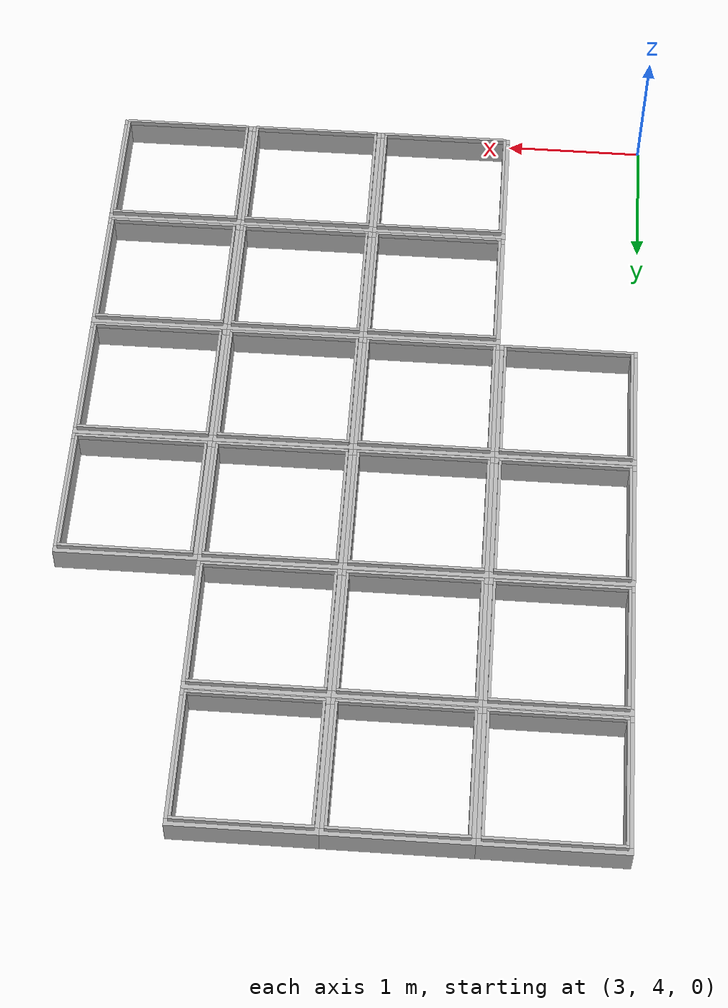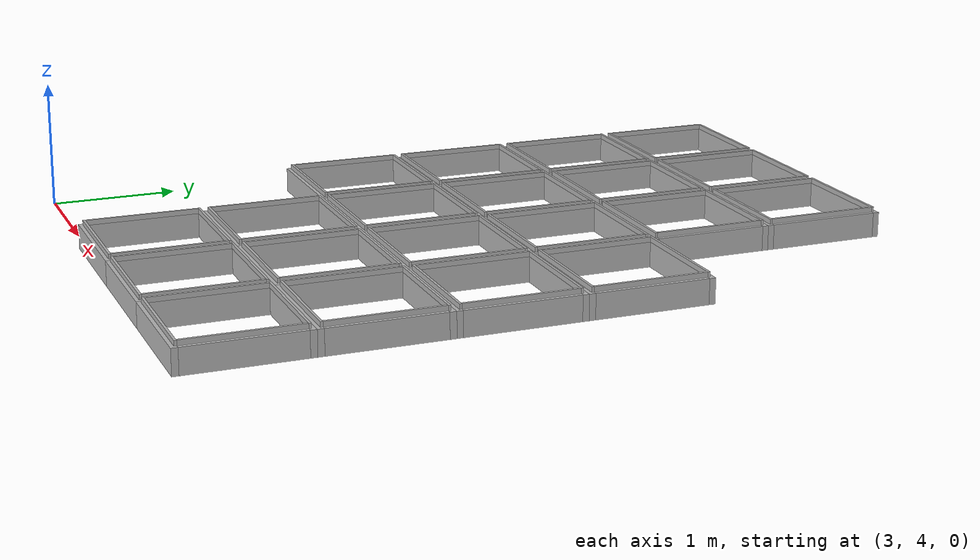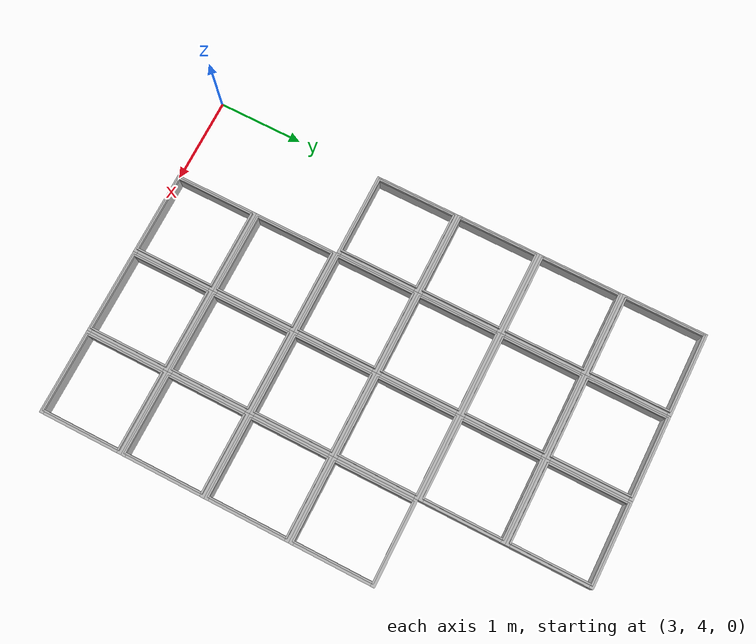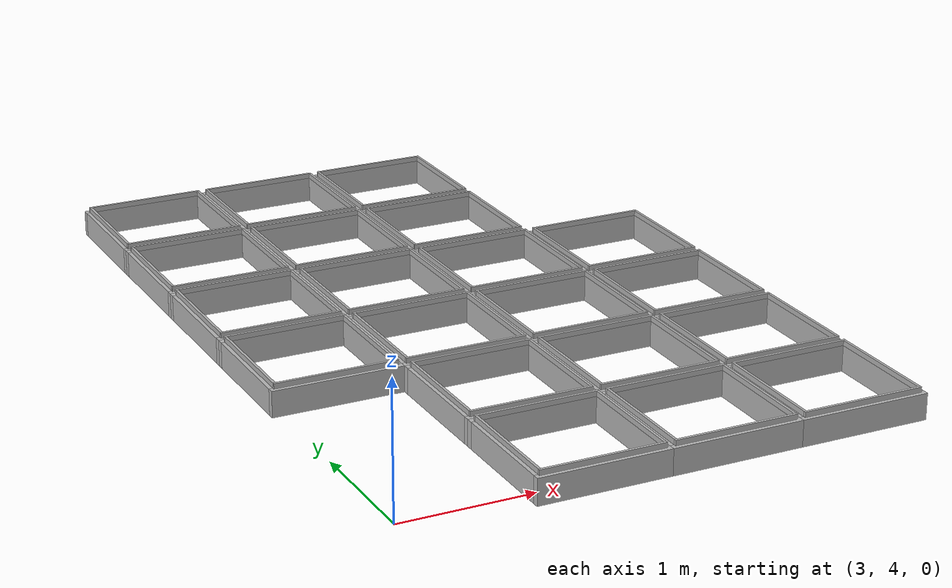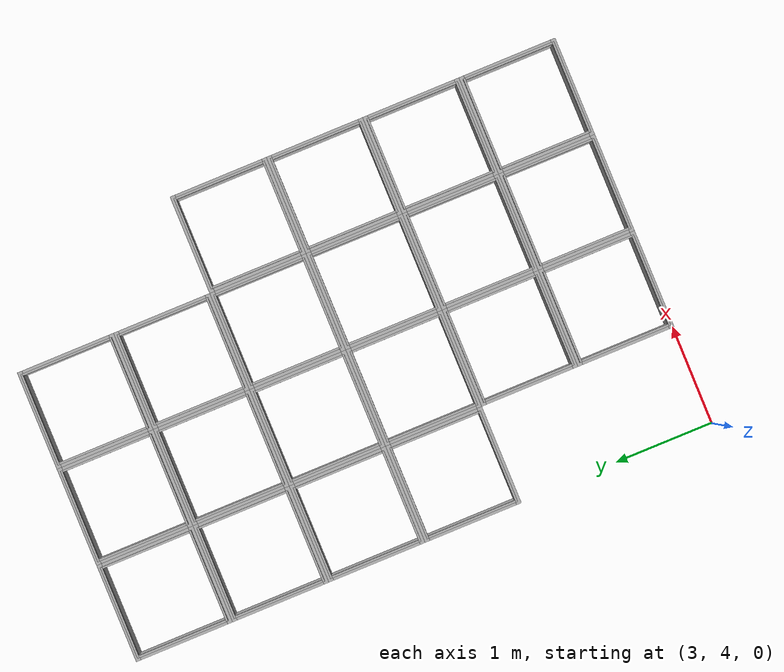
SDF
<sdf version="1.4">
 <model name="Auto Store Frame">
  <static>true</static>
  <link name="cell_36">
   <pose>3.5 6.5 0 0 0 0</pose>
   <collision name="frame_collision_x1">
    <pose>0 -0.475 0 0 0 0</pose>
    <geometry><box><size>1 0.05 0.2 0 0 0</size></box></geometry>
   </collision>
   <collision name="frame_collision_x2">
    <pose>0 0.475 0 0 0 0</pose>
    <geometry><box><size>1 0.05 0.2 0 0 0</size></box></geometry>
   </collision>
   <collision name="frame_collision_y1">
    <pose>-0.475 0 0 0 0 0</pose>
    <geometry><box><size>0.05 0.9 0.2 0 0 0</size></box></geometry>
   </collision>
   <collision name="frame_collision_y2">
    <pose>0.475 0 0 0 0 0</pose>
    <geometry><box><size>0.05 0.9 0.2 0 0 0</size></box></geometry>
   </collision>
   <collision name="guide_collision_x1">
    <pose>0 -0.46 0.12 0 0 0</pose>
    <geometry><box><size>0.94 0.02 0.04 0 0 0</size></box></geometry>
   </collision>
   <collision name="guide_collision_x2">
    <pose>0 0.46 0.12 0 0 0</pose>
    <geometry><box><size>0.94 0.02 0.04 0 0 0</size></box></geometry>
   </collision>
   <collision name="guide_collision_y1">
    <pose>-0.46 0 0.12 0 0 0</pose>
    <geometry><box><size>0.02 0.9 0.04 0 0 0</size></box></geometry>
   </collision>
   <collision name="guide_collision_y2">
    <pose>0.46 0 0.12 0 0 0</pose>
    <geometry><box><size>0.02 0.9 0.04 0 0 0</size></box></geometry>
   </collision>
   <visual name="frame_visual_x1">
    <pose>0 -0.475 0 0 0 0</pose>
    <geometry><box><size>1 0.05 0.2 0 0 0</size></box></geometry>
   </visual>
   <visual name="frame_visual_x2">
    <pose>0 0.475 0 0 0 0</pose>
    <geometry><box><size>1 0.05 0.2 0 0 0</size></box></geometry>
   </visual>
   <visual name="frame_visual_y1">
    <pose>-0.475 0 0 0 0 0</pose>
    <geometry><box><size>0.05 0.9 0.2 0 0 0</size></box></geometry>
   </visual>
   <visual name="frame_visual_y2">
    <pose>0.475 0 0 0 0 0</pose>
    <geometry><box><size>0.05 0.9 0.2 0 0 0</size></box></geometry>
   </visual>
   <visual name="guide_visual_x1">
    <pose>0 -0.46 0.12 0 0 0</pose>
    <geometry><box><size>0.94 0.02 0.04 0 0 0</size></box></geometry>
   </visual>
   <visual name="guide_visual_x2">
    <pose>0 0.46 0.12 0 0 0</pose>
    <geometry><box><size>0.94 0.02 0.04 0 0 0</size></box></geometry>
   </visual>
   <visual name="guide_visual_y1">
    <pose>-0.46 0 0.12 0 0 0</pose>
    <geometry><box><size>0.02 0.9 0.04 0 0 0</size></box></geometry>
   </visual>
   <visual name="guide_visual_y2">
    <pose>0.46 0 0.12 0 0 0</pose>
    <geometry><box><size>0.02 0.9 0.04 0 0 0</size></box></geometry>
   </visual>
  </link>
  <link name="cell_37">
   <pose>3.5 7.5 0 0 0 0</pose>
   <collision name="frame_collision_x1">
    <pose>0 -0.475 0 0 0 0</pose>
    <geometry><box><size>1 0.05 0.2 0 0 0</size></box></geometry>
   </collision>
   <collision name="frame_collision_x2">
    <pose>0 0.475 0 0 0 0</pose>
    <geometry><box><size>1 0.05 0.2 0 0 0</size></box></geometry>
   </collision>
   <collision name="frame_collision_y1">
    <pose>-0.475 0 0 0 0 0</pose>
    <geometry><box><size>0.05 0.9 0.2 0 0 0</size></box></geometry>
   </collision>
   <collision name="frame_collision_y2">
    <pose>0.475 0 0 0 0 0</pose>
    <geometry><box><size>0.05 0.9 0.2 0 0 0</size></box></geometry>
   </collision>
   <collision name="guide_collision_x1">
    <pose>0 -0.46 0.12 0 0 0</pose>
    <geometry><box><size>0.94 0.02 0.04 0 0 0</size></box></geometry>
   </collision>
   <collision name="guide_collision_x2">
    <pose>0 0.46 0.12 0 0 0</pose>
    <geometry><box><size>0.94 0.02 0.04 0 0 0</size></box></geometry>
   </collision>
   <collision name="guide_collision_y1">
    <pose>-0.46 0 0.12 0 0 0</pose>
    <geometry><box><size>0.02 0.9 0.04 0 0 0</size></box></geometry>
   </collision>
   <collision name="guide_collision_y2">
    <pose>0.46 0 0.12 0 0 0</pose>
    <geometry><box><size>0.02 0.9 0.04 0 0 0</size></box></geometry>
   </collision>
   <visual name="frame_visual_x1">
    <pose>0 -0.475 0 0 0 0</pose>
    <geometry><box><size>1 0.05 0.2 0 0 0</size></box></geometry>
   </visual>
   <visual name="frame_visual_x2">
    <pose>0 0.475 0 0 0 0</pose>
    <geometry><box><size>1 0.05 0.2 0 0 0</size></box></geometry>
   </visual>
   <visual name="frame_visual_y1">
    <pose>-0.475 0 0 0 0 0</pose>
    <geometry><box><size>0.05 0.9 0.2 0 0 0</size></box></geometry>
   </visual>
   <visual name="frame_visual_y2">
    <pose>0.475 0 0 0 0 0</pose>
    <geometry><box><size>0.05 0.9 0.2 0 0 0</size></box></geometry>
   </visual>
   <visual name="guide_visual_x1">
    <pose>0 -0.46 0.12 0 0 0</pose>
    <geometry><box><size>0.94 0.02 0.04 0 0 0</size></box></geometry>
   </visual>
   <visual name="guide_visual_x2">
    <pose>0 0.46 0.12 0 0 0</pose>
    <geometry><box><size>0.94 0.02 0.04 0 0 0</size></box></geometry>
   </visual>
   <visual name="guide_visual_y1">
    <pose>-0.46 0 0.12 0 0 0</pose>
    <geometry><box><size>0.02 0.9 0.04 0 0 0</size></box></geometry>
   </visual>
   <visual name="guide_visual_y2">
    <pose>0.46 0 0.12 0 0 0</pose>
    <geometry><box><size>0.02 0.9 0.04 0 0 0</size></box></geometry>
   </visual>
  </link>
  <link name="cell_38">
   <pose>3.5 8.5 0 0 0 0</pose>
   <collision name="frame_collision_x1">
    <pose>0 -0.475 0 0 0 0</pose>
    <geometry><box><size>1 0.05 0.2 0 0 0</size></box></geometry>
   </collision>
   <collision name="frame_collision_x2">
    <pose>0 0.475 0 0 0 0</pose>
    <geometry><box><size>1 0.05 0.2 0 0 0</size></box></geometry>
   </collision>
   <collision name="frame_collision_y1">
    <pose>-0.475 0 0 0 0 0</pose>
    <geometry><box><size>0.05 0.9 0.2 0 0 0</size></box></geometry>
   </collision>
   <collision name="frame_collision_y2">
    <pose>0.475 0 0 0 0 0</pose>
    <geometry><box><size>0.05 0.9 0.2 0 0 0</size></box></geometry>
   </collision>
   <collision name="guide_collision_x1">
    <pose>0 -0.46 0.12 0 0 0</pose>
    <geometry><box><size>0.94 0.02 0.04 0 0 0</size></box></geometry>
   </collision>
   <collision name="guide_collision_x2">
    <pose>0 0.46 0.12 0 0 0</pose>
    <geometry><box><size>0.94 0.02 0.04 0 0 0</size></box></geometry>
   </collision>
   <collision name="guide_collision_y1">
    <pose>-0.46 0 0.12 0 0 0</pose>
    <geometry><box><size>0.02 0.9 0.04 0 0 0</size></box></geometry>
   </collision>
   <collision name="guide_collision_y2">
    <pose>0.46 0 0.12 0 0 0</pose>
    <geometry><box><size>0.02 0.9 0.04 0 0 0</size></box></geometry>
   </collision>
   <visual name="frame_visual_x1">
    <pose>0 -0.475 0 0 0 0</pose>
    <geometry><box><size>1 0.05 0.2 0 0 0</size></box></geometry>
   </visual>
   <visual name="frame_visual_x2">
    <pose>0 0.475 0 0 0 0</pose>
    <geometry><box><size>1 0.05 0.2 0 0 0</size></box></geometry>
   </visual>
   <visual name="frame_visual_y1">
    <pose>-0.475 0 0 0 0 0</pose>
    <geometry><box><size>0.05 0.9 0.2 0 0 0</size></box></geometry>
   </visual>
   <visual name="frame_visual_y2">
    <pose>0.475 0 0 0 0 0</pose>
    <geometry><box><size>0.05 0.9 0.2 0 0 0</size></box></geometry>
   </visual>
   <visual name="guide_visual_x1">
    <pose>0 -0.46 0.12 0 0 0</pose>
    <geometry><box><size>0.94 0.02 0.04 0 0 0</size></box></geometry>
   </visual>
   <visual name="guide_visual_x2">
    <pose>0 0.46 0.12 0 0 0</pose>
    <geometry><box><size>0.94 0.02 0.04 0 0 0</size></box></geometry>
   </visual>
   <visual name="guide_visual_y1">
    <pose>-0.46 0 0.12 0 0 0</pose>
    <geometry><box><size>0.02 0.9 0.04 0 0 0</size></box></geometry>
   </visual>
   <visual name="guide_visual_y2">
    <pose>0.46 0 0.12 0 0 0</pose>
    <geometry><box><size>0.02 0.9 0.04 0 0 0</size></box></geometry>
   </visual>
  </link>
  <link name="cell_39">
   <pose>3.5 9.5 0 0 0 0</pose>
   <collision name="frame_collision_x1">
    <pose>0 -0.475 0 0 0 0</pose>
    <geometry><box><size>1 0.05 0.2 0 0 0</size></box></geometry>
   </collision>
   <collision name="frame_collision_x2">
    <pose>0 0.475 0 0 0 0</pose>
    <geometry><box><size>1 0.05 0.2 0 0 0</size></box></geometry>
   </collision>
   <collision name="frame_collision_y1">
    <pose>-0.475 0 0 0 0 0</pose>
    <geometry><box><size>0.05 0.9 0.2 0 0 0</size></box></geometry>
   </collision>
   <collision name="frame_collision_y2">
    <pose>0.475 0 0 0 0 0</pose>
    <geometry><box><size>0.05 0.9 0.2 0 0 0</size></box></geometry>
   </collision>
   <collision name="guide_collision_x1">
    <pose>0 -0.46 0.12 0 0 0</pose>
    <geometry><box><size>0.94 0.02 0.04 0 0 0</size></box></geometry>
   </collision>
   <collision name="guide_collision_x2">
    <pose>0 0.46 0.12 0 0 0</pose>
    <geometry><box><size>0.94 0.02 0.04 0 0 0</size></box></geometry>
   </collision>
   <collision name="guide_collision_y1">
    <pose>-0.46 0 0.12 0 0 0</pose>
    <geometry><box><size>0.02 0.9 0.04 0 0 0</size></box></geometry>
   </collision>
   <collision name="guide_collision_y2">
    <pose>0.46 0 0.12 0 0 0</pose>
    <geometry><box><size>0.02 0.9 0.04 0 0 0</size></box></geometry>
   </collision>
   <visual name="frame_visual_x1">
    <pose>0 -0.475 0 0 0 0</pose>
    <geometry><box><size>1 0.05 0.2 0 0 0</size></box></geometry>
   </visual>
   <visual name="frame_visual_x2">
    <pose>0 0.475 0 0 0 0</pose>
    <geometry><box><size>1 0.05 0.2 0 0 0</size></box></geometry>
   </visual>
   <visual name="frame_visual_y1">
    <pose>-0.475 0 0 0 0 0</pose>
    <geometry><box><size>0.05 0.9 0.2 0 0 0</size></box></geometry>
   </visual>
   <visual name="frame_visual_y2">
    <pose>0.475 0 0 0 0 0</pose>
    <geometry><box><size>0.05 0.9 0.2 0 0 0</size></box></geometry>
   </visual>
   <visual name="guide_visual_x1">
    <pose>0 -0.46 0.12 0 0 0</pose>
    <geometry><box><size>0.94 0.02 0.04 0 0 0</size></box></geometry>
   </visual>
   <visual name="guide_visual_x2">
    <pose>0 0.46 0.12 0 0 0</pose>
    <geometry><box><size>0.94 0.02 0.04 0 0 0</size></box></geometry>
   </visual>
   <visual name="guide_visual_y1">
    <pose>-0.46 0 0.12 0 0 0</pose>
    <geometry><box><size>0.02 0.9 0.04 0 0 0</size></box></geometry>
   </visual>
   <visual name="guide_visual_y2">
    <pose>0.46 0 0.12 0 0 0</pose>
    <geometry><box><size>0.02 0.9 0.04 0 0 0</size></box></geometry>
   </visual>
  </link>
  <link name="cell_44">
   <pose>4.5 4.5 0 0 0 0</pose>
   <collision name="frame_collision_x1">
    <pose>0 -0.475 0 0 0 0</pose>
    <geometry><box><size>1 0.05 0.2 0 0 0</size></box></geometry>
   </collision>
   <collision name="frame_collision_x2">
    <pose>0 0.475 0 0 0 0</pose>
    <geometry><box><size>1 0.05 0.2 0 0 0</size></box></geometry>
   </collision>
   <collision name="frame_collision_y1">
    <pose>-0.475 0 0 0 0 0</pose>
    <geometry><box><size>0.05 0.9 0.2 0 0 0</size></box></geometry>
   </collision>
   <collision name="frame_collision_y2">
    <pose>0.475 0 0 0 0 0</pose>
    <geometry><box><size>0.05 0.9 0.2 0 0 0</size></box></geometry>
   </collision>
   <collision name="guide_collision_x1">
    <pose>0 -0.46 0.12 0 0 0</pose>
    <geometry><box><size>0.94 0.02 0.04 0 0 0</size></box></geometry>
   </collision>
   <collision name="guide_collision_x2">
    <pose>0 0.46 0.12 0 0 0</pose>
    <geometry><box><size>0.94 0.02 0.04 0 0 0</size></box></geometry>
   </collision>
   <collision name="guide_collision_y1">
    <pose>-0.46 0 0.12 0 0 0</pose>
    <geometry><box><size>0.02 0.9 0.04 0 0 0</size></box></geometry>
   </collision>
   <collision name="guide_collision_y2">
    <pose>0.46 0 0.12 0 0 0</pose>
    <geometry><box><size>0.02 0.9 0.04 0 0 0</size></box></geometry>
   </collision>
   <visual name="frame_visual_x1">
    <pose>0 -0.475 0 0 0 0</pose>
    <geometry><box><size>1 0.05 0.2 0 0 0</size></box></geometry>
   </visual>
   <visual name="frame_visual_x2">
    <pose>0 0.475 0 0 0 0</pose>
    <geometry><box><size>1 0.05 0.2 0 0 0</size></box></geometry>
   </visual>
   <visual name="frame_visual_y1">
    <pose>-0.475 0 0 0 0 0</pose>
    <geometry><box><size>0.05 0.9 0.2 0 0 0</size></box></geometry>
   </visual>
   <visual name="frame_visual_y2">
    <pose>0.475 0 0 0 0 0</pose>
    <geometry><box><size>0.05 0.9 0.2 0 0 0</size></box></geometry>
   </visual>
   <visual name="guide_visual_x1">
    <pose>0 -0.46 0.12 0 0 0</pose>
    <geometry><box><size>0.94 0.02 0.04 0 0 0</size></box></geometry>
   </visual>
   <visual name="guide_visual_x2">
    <pose>0 0.46 0.12 0 0 0</pose>
    <geometry><box><size>0.94 0.02 0.04 0 0 0</size></box></geometry>
   </visual>
   <visual name="guide_visual_y1">
    <pose>-0.46 0 0.12 0 0 0</pose>
    <geometry><box><size>0.02 0.9 0.04 0 0 0</size></box></geometry>
   </visual>
   <visual name="guide_visual_y2">
    <pose>0.46 0 0.12 0 0 0</pose>
    <geometry><box><size>0.02 0.9 0.04 0 0 0</size></box></geometry>
   </visual>
  </link>
  <link name="cell_45">
   <pose>4.5 5.5 0 0 0 0</pose>
   <collision name="frame_collision_x1">
    <pose>0 -0.475 0 0 0 0</pose>
    <geometry><box><size>1 0.05 0.2 0 0 0</size></box></geometry>
   </collision>
   <collision name="frame_collision_x2">
    <pose>0 0.475 0 0 0 0</pose>
    <geometry><box><size>1 0.05 0.2 0 0 0</size></box></geometry>
   </collision>
   <collision name="frame_collision_y1">
    <pose>-0.475 0 0 0 0 0</pose>
    <geometry><box><size>0.05 0.9 0.2 0 0 0</size></box></geometry>
   </collision>
   <collision name="frame_collision_y2">
    <pose>0.475 0 0 0 0 0</pose>
    <geometry><box><size>0.05 0.9 0.2 0 0 0</size></box></geometry>
   </collision>
   <collision name="guide_collision_x1">
    <pose>0 -0.46 0.12 0 0 0</pose>
    <geometry><box><size>0.94 0.02 0.04 0 0 0</size></box></geometry>
   </collision>
   <collision name="guide_collision_x2">
    <pose>0 0.46 0.12 0 0 0</pose>
    <geometry><box><size>0.94 0.02 0.04 0 0 0</size></box></geometry>
   </collision>
   <collision name="guide_collision_y1">
    <pose>-0.46 0 0.12 0 0 0</pose>
    <geometry><box><size>0.02 0.9 0.04 0 0 0</size></box></geometry>
   </collision>
   <collision name="guide_collision_y2">
    <pose>0.46 0 0.12 0 0 0</pose>
    <geometry><box><size>0.02 0.9 0.04 0 0 0</size></box></geometry>
   </collision>
   <visual name="frame_visual_x1">
    <pose>0 -0.475 0 0 0 0</pose>
    <geometry><box><size>1 0.05 0.2 0 0 0</size></box></geometry>
   </visual>
   <visual name="frame_visual_x2">
    <pose>0 0.475 0 0 0 0</pose>
    <geometry><box><size>1 0.05 0.2 0 0 0</size></box></geometry>
   </visual>
   <visual name="frame_visual_y1">
    <pose>-0.475 0 0 0 0 0</pose>
    <geometry><box><size>0.05 0.9 0.2 0 0 0</size></box></geometry>
   </visual>
   <visual name="frame_visual_y2">
    <pose>0.475 0 0 0 0 0</pose>
    <geometry><box><size>0.05 0.9 0.2 0 0 0</size></box></geometry>
   </visual>
   <visual name="guide_visual_x1">
    <pose>0 -0.46 0.12 0 0 0</pose>
    <geometry><box><size>0.94 0.02 0.04 0 0 0</size></box></geometry>
   </visual>
   <visual name="guide_visual_x2">
    <pose>0 0.46 0.12 0 0 0</pose>
    <geometry><box><size>0.94 0.02 0.04 0 0 0</size></box></geometry>
   </visual>
   <visual name="guide_visual_y1">
    <pose>-0.46 0 0.12 0 0 0</pose>
    <geometry><box><size>0.02 0.9 0.04 0 0 0</size></box></geometry>
   </visual>
   <visual name="guide_visual_y2">
    <pose>0.46 0 0.12 0 0 0</pose>
    <geometry><box><size>0.02 0.9 0.04 0 0 0</size></box></geometry>
   </visual>
  </link>
  <link name="cell_46">
   <pose>4.5 6.5 0 0 0 0</pose>
   <collision name="frame_collision_x1">
    <pose>0 -0.475 0 0 0 0</pose>
    <geometry><box><size>1 0.05 0.2 0 0 0</size></box></geometry>
   </collision>
   <collision name="frame_collision_x2">
    <pose>0 0.475 0 0 0 0</pose>
    <geometry><box><size>1 0.05 0.2 0 0 0</size></box></geometry>
   </collision>
   <collision name="frame_collision_y1">
    <pose>-0.475 0 0 0 0 0</pose>
    <geometry><box><size>0.05 0.9 0.2 0 0 0</size></box></geometry>
   </collision>
   <collision name="frame_collision_y2">
    <pose>0.475 0 0 0 0 0</pose>
    <geometry><box><size>0.05 0.9 0.2 0 0 0</size></box></geometry>
   </collision>
   <collision name="guide_collision_x1">
    <pose>0 -0.46 0.12 0 0 0</pose>
    <geometry><box><size>0.94 0.02 0.04 0 0 0</size></box></geometry>
   </collision>
   <collision name="guide_collision_x2">
    <pose>0 0.46 0.12 0 0 0</pose>
    <geometry><box><size>0.94 0.02 0.04 0 0 0</size></box></geometry>
   </collision>
   <collision name="guide_collision_y1">
    <pose>-0.46 0 0.12 0 0 0</pose>
    <geometry><box><size>0.02 0.9 0.04 0 0 0</size></box></geometry>
   </collision>
   <collision name="guide_collision_y2">
    <pose>0.46 0 0.12 0 0 0</pose>
    <geometry><box><size>0.02 0.9 0.04 0 0 0</size></box></geometry>
   </collision>
   <visual name="frame_visual_x1">
    <pose>0 -0.475 0 0 0 0</pose>
    <geometry><box><size>1 0.05 0.2 0 0 0</size></box></geometry>
   </visual>
   <visual name="frame_visual_x2">
    <pose>0 0.475 0 0 0 0</pose>
    <geometry><box><size>1 0.05 0.2 0 0 0</size></box></geometry>
   </visual>
   <visual name="frame_visual_y1">
    <pose>-0.475 0 0 0 0 0</pose>
    <geometry><box><size>0.05 0.9 0.2 0 0 0</size></box></geometry>
   </visual>
   <visual name="frame_visual_y2">
    <pose>0.475 0 0 0 0 0</pose>
    <geometry><box><size>0.05 0.9 0.2 0 0 0</size></box></geometry>
   </visual>
   <visual name="guide_visual_x1">
    <pose>0 -0.46 0.12 0 0 0</pose>
    <geometry><box><size>0.94 0.02 0.04 0 0 0</size></box></geometry>
   </visual>
   <visual name="guide_visual_x2">
    <pose>0 0.46 0.12 0 0 0</pose>
    <geometry><box><size>0.94 0.02 0.04 0 0 0</size></box></geometry>
   </visual>
   <visual name="guide_visual_y1">
    <pose>-0.46 0 0.12 0 0 0</pose>
    <geometry><box><size>0.02 0.9 0.04 0 0 0</size></box></geometry>
   </visual>
   <visual name="guide_visual_y2">
    <pose>0.46 0 0.12 0 0 0</pose>
    <geometry><box><size>0.02 0.9 0.04 0 0 0</size></box></geometry>
   </visual>
  </link>
  <link name="cell_47">
   <pose>4.5 7.5 0 0 0 0</pose>
   <collision name="frame_collision_x1">
    <pose>0 -0.475 0 0 0 0</pose>
    <geometry><box><size>1 0.05 0.2 0 0 0</size></box></geometry>
   </collision>
   <collision name="frame_collision_x2">
    <pose>0 0.475 0 0 0 0</pose>
    <geometry><box><size>1 0.05 0.2 0 0 0</size></box></geometry>
   </collision>
   <collision name="frame_collision_y1">
    <pose>-0.475 0 0 0 0 0</pose>
    <geometry><box><size>0.05 0.9 0.2 0 0 0</size></box></geometry>
   </collision>
   <collision name="frame_collision_y2">
    <pose>0.475 0 0 0 0 0</pose>
    <geometry><box><size>0.05 0.9 0.2 0 0 0</size></box></geometry>
   </collision>
   <collision name="guide_collision_x1">
    <pose>0 -0.46 0.12 0 0 0</pose>
    <geometry><box><size>0.94 0.02 0.04 0 0 0</size></box></geometry>
   </collision>
   <collision name="guide_collision_x2">
    <pose>0 0.46 0.12 0 0 0</pose>
    <geometry><box><size>0.94 0.02 0.04 0 0 0</size></box></geometry>
   </collision>
   <collision name="guide_collision_y1">
    <pose>-0.46 0 0.12 0 0 0</pose>
    <geometry><box><size>0.02 0.9 0.04 0 0 0</size></box></geometry>
   </collision>
   <collision name="guide_collision_y2">
    <pose>0.46 0 0.12 0 0 0</pose>
    <geometry><box><size>0.02 0.9 0.04 0 0 0</size></box></geometry>
   </collision>
   <visual name="frame_visual_x1">
    <pose>0 -0.475 0 0 0 0</pose>
    <geometry><box><size>1 0.05 0.2 0 0 0</size></box></geometry>
   </visual>
   <visual name="frame_visual_x2">
    <pose>0 0.475 0 0 0 0</pose>
    <geometry><box><size>1 0.05 0.2 0 0 0</size></box></geometry>
   </visual>
   <visual name="frame_visual_y1">
    <pose>-0.475 0 0 0 0 0</pose>
    <geometry><box><size>0.05 0.9 0.2 0 0 0</size></box></geometry>
   </visual>
   <visual name="frame_visual_y2">
    <pose>0.475 0 0 0 0 0</pose>
    <geometry><box><size>0.05 0.9 0.2 0 0 0</size></box></geometry>
   </visual>
   <visual name="guide_visual_x1">
    <pose>0 -0.46 0.12 0 0 0</pose>
    <geometry><box><size>0.94 0.02 0.04 0 0 0</size></box></geometry>
   </visual>
   <visual name="guide_visual_x2">
    <pose>0 0.46 0.12 0 0 0</pose>
    <geometry><box><size>0.94 0.02 0.04 0 0 0</size></box></geometry>
   </visual>
   <visual name="guide_visual_y1">
    <pose>-0.46 0 0.12 0 0 0</pose>
    <geometry><box><size>0.02 0.9 0.04 0 0 0</size></box></geometry>
   </visual>
   <visual name="guide_visual_y2">
    <pose>0.46 0 0.12 0 0 0</pose>
    <geometry><box><size>0.02 0.9 0.04 0 0 0</size></box></geometry>
   </visual>
  </link>
  <link name="cell_48">
   <pose>4.5 8.5 0 0 0 0</pose>
   <collision name="frame_collision_x1">
    <pose>0 -0.475 0 0 0 0</pose>
    <geometry><box><size>1 0.05 0.2 0 0 0</size></box></geometry>
   </collision>
   <collision name="frame_collision_x2">
    <pose>0 0.475 0 0 0 0</pose>
    <geometry><box><size>1 0.05 0.2 0 0 0</size></box></geometry>
   </collision>
   <collision name="frame_collision_y1">
    <pose>-0.475 0 0 0 0 0</pose>
    <geometry><box><size>0.05 0.9 0.2 0 0 0</size></box></geometry>
   </collision>
   <collision name="frame_collision_y2">
    <pose>0.475 0 0 0 0 0</pose>
    <geometry><box><size>0.05 0.9 0.2 0 0 0</size></box></geometry>
   </collision>
   <collision name="guide_collision_x1">
    <pose>0 -0.46 0.12 0 0 0</pose>
    <geometry><box><size>0.94 0.02 0.04 0 0 0</size></box></geometry>
   </collision>
   <collision name="guide_collision_x2">
    <pose>0 0.46 0.12 0 0 0</pose>
    <geometry><box><size>0.94 0.02 0.04 0 0 0</size></box></geometry>
   </collision>
   <collision name="guide_collision_y1">
    <pose>-0.46 0 0.12 0 0 0</pose>
    <geometry><box><size>0.02 0.9 0.04 0 0 0</size></box></geometry>
   </collision>
   <collision name="guide_collision_y2">
    <pose>0.46 0 0.12 0 0 0</pose>
    <geometry><box><size>0.02 0.9 0.04 0 0 0</size></box></geometry>
   </collision>
   <visual name="frame_visual_x1">
    <pose>0 -0.475 0 0 0 0</pose>
    <geometry><box><size>1 0.05 0.2 0 0 0</size></box></geometry>
   </visual>
   <visual name="frame_visual_x2">
    <pose>0 0.475 0 0 0 0</pose>
    <geometry><box><size>1 0.05 0.2 0 0 0</size></box></geometry>
   </visual>
   <visual name="frame_visual_y1">
    <pose>-0.475 0 0 0 0 0</pose>
    <geometry><box><size>0.05 0.9 0.2 0 0 0</size></box></geometry>
   </visual>
   <visual name="frame_visual_y2">
    <pose>0.475 0 0 0 0 0</pose>
    <geometry><box><size>0.05 0.9 0.2 0 0 0</size></box></geometry>
   </visual>
   <visual name="guide_visual_x1">
    <pose>0 -0.46 0.12 0 0 0</pose>
    <geometry><box><size>0.94 0.02 0.04 0 0 0</size></box></geometry>
   </visual>
   <visual name="guide_visual_x2">
    <pose>0 0.46 0.12 0 0 0</pose>
    <geometry><box><size>0.94 0.02 0.04 0 0 0</size></box></geometry>
   </visual>
   <visual name="guide_visual_y1">
    <pose>-0.46 0 0.12 0 0 0</pose>
    <geometry><box><size>0.02 0.9 0.04 0 0 0</size></box></geometry>
   </visual>
   <visual name="guide_visual_y2">
    <pose>0.46 0 0.12 0 0 0</pose>
    <geometry><box><size>0.02 0.9 0.04 0 0 0</size></box></geometry>
   </visual>
  </link>
  <link name="cell_49">
   <pose>4.5 9.5 0 0 0 0</pose>
   <collision name="frame_collision_x1">
    <pose>0 -0.475 0 0 0 0</pose>
    <geometry><box><size>1 0.05 0.2 0 0 0</size></box></geometry>
   </collision>
   <collision name="frame_collision_x2">
    <pose>0 0.475 0 0 0 0</pose>
    <geometry><box><size>1 0.05 0.2 0 0 0</size></box></geometry>
   </collision>
   <collision name="frame_collision_y1">
    <pose>-0.475 0 0 0 0 0</pose>
    <geometry><box><size>0.05 0.9 0.2 0 0 0</size></box></geometry>
   </collision>
   <collision name="frame_collision_y2">
    <pose>0.475 0 0 0 0 0</pose>
    <geometry><box><size>0.05 0.9 0.2 0 0 0</size></box></geometry>
   </collision>
   <collision name="guide_collision_x1">
    <pose>0 -0.46 0.12 0 0 0</pose>
    <geometry><box><size>0.94 0.02 0.04 0 0 0</size></box></geometry>
   </collision>
   <collision name="guide_collision_x2">
    <pose>0 0.46 0.12 0 0 0</pose>
    <geometry><box><size>0.94 0.02 0.04 0 0 0</size></box></geometry>
   </collision>
   <collision name="guide_collision_y1">
    <pose>-0.46 0 0.12 0 0 0</pose>
    <geometry><box><size>0.02 0.9 0.04 0 0 0</size></box></geometry>
   </collision>
   <collision name="guide_collision_y2">
    <pose>0.46 0 0.12 0 0 0</pose>
    <geometry><box><size>0.02 0.9 0.04 0 0 0</size></box></geometry>
   </collision>
   <visual name="frame_visual_x1">
    <pose>0 -0.475 0 0 0 0</pose>
    <geometry><box><size>1 0.05 0.2 0 0 0</size></box></geometry>
   </visual>
   <visual name="frame_visual_x2">
    <pose>0 0.475 0 0 0 0</pose>
    <geometry><box><size>1 0.05 0.2 0 0 0</size></box></geometry>
   </visual>
   <visual name="frame_visual_y1">
    <pose>-0.475 0 0 0 0 0</pose>
    <geometry><box><size>0.05 0.9 0.2 0 0 0</size></box></geometry>
   </visual>
   <visual name="frame_visual_y2">
    <pose>0.475 0 0 0 0 0</pose>
    <geometry><box><size>0.05 0.9 0.2 0 0 0</size></box></geometry>
   </visual>
   <visual name="guide_visual_x1">
    <pose>0 -0.46 0.12 0 0 0</pose>
    <geometry><box><size>0.94 0.02 0.04 0 0 0</size></box></geometry>
   </visual>
   <visual name="guide_visual_x2">
    <pose>0 0.46 0.12 0 0 0</pose>
    <geometry><box><size>0.94 0.02 0.04 0 0 0</size></box></geometry>
   </visual>
   <visual name="guide_visual_y1">
    <pose>-0.46 0 0.12 0 0 0</pose>
    <geometry><box><size>0.02 0.9 0.04 0 0 0</size></box></geometry>
   </visual>
   <visual name="guide_visual_y2">
    <pose>0.46 0 0.12 0 0 0</pose>
    <geometry><box><size>0.02 0.9 0.04 0 0 0</size></box></geometry>
   </visual>
  </link>
  <link name="cell_54">
   <pose>5.5 4.5 0 0 0 0</pose>
   <collision name="frame_collision_x1">
    <pose>0 -0.475 0 0 0 0</pose>
    <geometry><box><size>1 0.05 0.2 0 0 0</size></box></geometry>
   </collision>
   <collision name="frame_collision_x2">
    <pose>0 0.475 0 0 0 0</pose>
    <geometry><box><size>1 0.05 0.2 0 0 0</size></box></geometry>
   </collision>
   <collision name="frame_collision_y1">
    <pose>-0.475 0 0 0 0 0</pose>
    <geometry><box><size>0.05 0.9 0.2 0 0 0</size></box></geometry>
   </collision>
   <collision name="frame_collision_y2">
    <pose>0.475 0 0 0 0 0</pose>
    <geometry><box><size>0.05 0.9 0.2 0 0 0</size></box></geometry>
   </collision>
   <collision name="guide_collision_x1">
    <pose>0 -0.46 0.12 0 0 0</pose>
    <geometry><box><size>0.94 0.02 0.04 0 0 0</size></box></geometry>
   </collision>
   <collision name="guide_collision_x2">
    <pose>0 0.46 0.12 0 0 0</pose>
    <geometry><box><size>0.94 0.02 0.04 0 0 0</size></box></geometry>
   </collision>
   <collision name="guide_collision_y1">
    <pose>-0.46 0 0.12 0 0 0</pose>
    <geometry><box><size>0.02 0.9 0.04 0 0 0</size></box></geometry>
   </collision>
   <collision name="guide_collision_y2">
    <pose>0.46 0 0.12 0 0 0</pose>
    <geometry><box><size>0.02 0.9 0.04 0 0 0</size></box></geometry>
   </collision>
   <visual name="frame_visual_x1">
    <pose>0 -0.475 0 0 0 0</pose>
    <geometry><box><size>1 0.05 0.2 0 0 0</size></box></geometry>
   </visual>
   <visual name="frame_visual_x2">
    <pose>0 0.475 0 0 0 0</pose>
    <geometry><box><size>1 0.05 0.2 0 0 0</size></box></geometry>
   </visual>
   <visual name="frame_visual_y1">
    <pose>-0.475 0 0 0 0 0</pose>
    <geometry><box><size>0.05 0.9 0.2 0 0 0</size></box></geometry>
   </visual>
   <visual name="frame_visual_y2">
    <pose>0.475 0 0 0 0 0</pose>
    <geometry><box><size>0.05 0.9 0.2 0 0 0</size></box></geometry>
   </visual>
   <visual name="guide_visual_x1">
    <pose>0 -0.46 0.12 0 0 0</pose>
    <geometry><box><size>0.94 0.02 0.04 0 0 0</size></box></geometry>
   </visual>
   <visual name="guide_visual_x2">
    <pose>0 0.46 0.12 0 0 0</pose>
    <geometry><box><size>0.94 0.02 0.04 0 0 0</size></box></geometry>
   </visual>
   <visual name="guide_visual_y1">
    <pose>-0.46 0 0.12 0 0 0</pose>
    <geometry><box><size>0.02 0.9 0.04 0 0 0</size></box></geometry>
   </visual>
   <visual name="guide_visual_y2">
    <pose>0.46 0 0.12 0 0 0</pose>
    <geometry><box><size>0.02 0.9 0.04 0 0 0</size></box></geometry>
   </visual>
  </link>
  <link name="cell_55">
   <pose>5.5 5.5 0 0 0 0</pose>
   <collision name="frame_collision_x1">
    <pose>0 -0.475 0 0 0 0</pose>
    <geometry><box><size>1 0.05 0.2 0 0 0</size></box></geometry>
   </collision>
   <collision name="frame_collision_x2">
    <pose>0 0.475 0 0 0 0</pose>
    <geometry><box><size>1 0.05 0.2 0 0 0</size></box></geometry>
   </collision>
   <collision name="frame_collision_y1">
    <pose>-0.475 0 0 0 0 0</pose>
    <geometry><box><size>0.05 0.9 0.2 0 0 0</size></box></geometry>
   </collision>
   <collision name="frame_collision_y2">
    <pose>0.475 0 0 0 0 0</pose>
    <geometry><box><size>0.05 0.9 0.2 0 0 0</size></box></geometry>
   </collision>
   <collision name="guide_collision_x1">
    <pose>0 -0.46 0.12 0 0 0</pose>
    <geometry><box><size>0.94 0.02 0.04 0 0 0</size></box></geometry>
   </collision>
   <collision name="guide_collision_x2">
    <pose>0 0.46 0.12 0 0 0</pose>
    <geometry><box><size>0.94 0.02 0.04 0 0 0</size></box></geometry>
   </collision>
   <collision name="guide_collision_y1">
    <pose>-0.46 0 0.12 0 0 0</pose>
    <geometry><box><size>0.02 0.9 0.04 0 0 0</size></box></geometry>
   </collision>
   <collision name="guide_collision_y2">
    <pose>0.46 0 0.12 0 0 0</pose>
    <geometry><box><size>0.02 0.9 0.04 0 0 0</size></box></geometry>
   </collision>
   <visual name="frame_visual_x1">
    <pose>0 -0.475 0 0 0 0</pose>
    <geometry><box><size>1 0.05 0.2 0 0 0</size></box></geometry>
   </visual>
   <visual name="frame_visual_x2">
    <pose>0 0.475 0 0 0 0</pose>
    <geometry><box><size>1 0.05 0.2 0 0 0</size></box></geometry>
   </visual>
   <visual name="frame_visual_y1">
    <pose>-0.475 0 0 0 0 0</pose>
    <geometry><box><size>0.05 0.9 0.2 0 0 0</size></box></geometry>
   </visual>
   <visual name="frame_visual_y2">
    <pose>0.475 0 0 0 0 0</pose>
    <geometry><box><size>0.05 0.9 0.2 0 0 0</size></box></geometry>
   </visual>
   <visual name="guide_visual_x1">
    <pose>0 -0.46 0.12 0 0 0</pose>
    <geometry><box><size>0.94 0.02 0.04 0 0 0</size></box></geometry>
   </visual>
   <visual name="guide_visual_x2">
    <pose>0 0.46 0.12 0 0 0</pose>
    <geometry><box><size>0.94 0.02 0.04 0 0 0</size></box></geometry>
   </visual>
   <visual name="guide_visual_y1">
    <pose>-0.46 0 0.12 0 0 0</pose>
    <geometry><box><size>0.02 0.9 0.04 0 0 0</size></box></geometry>
   </visual>
   <visual name="guide_visual_y2">
    <pose>0.46 0 0.12 0 0 0</pose>
    <geometry><box><size>0.02 0.9 0.04 0 0 0</size></box></geometry>
   </visual>
  </link>
  <link name="cell_56">
   <pose>5.5 6.5 0 0 0 0</pose>
   <collision name="frame_collision_x1">
    <pose>0 -0.475 0 0 0 0</pose>
    <geometry><box><size>1 0.05 0.2 0 0 0</size></box></geometry>
   </collision>
   <collision name="frame_collision_x2">
    <pose>0 0.475 0 0 0 0</pose>
    <geometry><box><size>1 0.05 0.2 0 0 0</size></box></geometry>
   </collision>
   <collision name="frame_collision_y1">
    <pose>-0.475 0 0 0 0 0</pose>
    <geometry><box><size>0.05 0.9 0.2 0 0 0</size></box></geometry>
   </collision>
   <collision name="frame_collision_y2">
    <pose>0.475 0 0 0 0 0</pose>
    <geometry><box><size>0.05 0.9 0.2 0 0 0</size></box></geometry>
   </collision>
   <collision name="guide_collision_x1">
    <pose>0 -0.46 0.12 0 0 0</pose>
    <geometry><box><size>0.94 0.02 0.04 0 0 0</size></box></geometry>
   </collision>
   <collision name="guide_collision_x2">
    <pose>0 0.46 0.12 0 0 0</pose>
    <geometry><box><size>0.94 0.02 0.04 0 0 0</size></box></geometry>
   </collision>
   <collision name="guide_collision_y1">
    <pose>-0.46 0 0.12 0 0 0</pose>
    <geometry><box><size>0.02 0.9 0.04 0 0 0</size></box></geometry>
   </collision>
   <collision name="guide_collision_y2">
    <pose>0.46 0 0.12 0 0 0</pose>
    <geometry><box><size>0.02 0.9 0.04 0 0 0</size></box></geometry>
   </collision>
   <visual name="frame_visual_x1">
    <pose>0 -0.475 0 0 0 0</pose>
    <geometry><box><size>1 0.05 0.2 0 0 0</size></box></geometry>
   </visual>
   <visual name="frame_visual_x2">
    <pose>0 0.475 0 0 0 0</pose>
    <geometry><box><size>1 0.05 0.2 0 0 0</size></box></geometry>
   </visual>
   <visual name="frame_visual_y1">
    <pose>-0.475 0 0 0 0 0</pose>
    <geometry><box><size>0.05 0.9 0.2 0 0 0</size></box></geometry>
   </visual>
   <visual name="frame_visual_y2">
    <pose>0.475 0 0 0 0 0</pose>
    <geometry><box><size>0.05 0.9 0.2 0 0 0</size></box></geometry>
   </visual>
   <visual name="guide_visual_x1">
    <pose>0 -0.46 0.12 0 0 0</pose>
    <geometry><box><size>0.94 0.02 0.04 0 0 0</size></box></geometry>
   </visual>
   <visual name="guide_visual_x2">
    <pose>0 0.46 0.12 0 0 0</pose>
    <geometry><box><size>0.94 0.02 0.04 0 0 0</size></box></geometry>
   </visual>
   <visual name="guide_visual_y1">
    <pose>-0.46 0 0.12 0 0 0</pose>
    <geometry><box><size>0.02 0.9 0.04 0 0 0</size></box></geometry>
   </visual>
   <visual name="guide_visual_y2">
    <pose>0.46 0 0.12 0 0 0</pose>
    <geometry><box><size>0.02 0.9 0.04 0 0 0</size></box></geometry>
   </visual>
  </link>
  <link name="cell_57">
   <pose>5.5 7.5 0 0 0 0</pose>
   <collision name="frame_collision_x1">
    <pose>0 -0.475 0 0 0 0</pose>
    <geometry><box><size>1 0.05 0.2 0 0 0</size></box></geometry>
   </collision>
   <collision name="frame_collision_x2">
    <pose>0 0.475 0 0 0 0</pose>
    <geometry><box><size>1 0.05 0.2 0 0 0</size></box></geometry>
   </collision>
   <collision name="frame_collision_y1">
    <pose>-0.475 0 0 0 0 0</pose>
    <geometry><box><size>0.05 0.9 0.2 0 0 0</size></box></geometry>
   </collision>
   <collision name="frame_collision_y2">
    <pose>0.475 0 0 0 0 0</pose>
    <geometry><box><size>0.05 0.9 0.2 0 0 0</size></box></geometry>
   </collision>
   <collision name="guide_collision_x1">
    <pose>0 -0.46 0.12 0 0 0</pose>
    <geometry><box><size>0.94 0.02 0.04 0 0 0</size></box></geometry>
   </collision>
   <collision name="guide_collision_x2">
    <pose>0 0.46 0.12 0 0 0</pose>
    <geometry><box><size>0.94 0.02 0.04 0 0 0</size></box></geometry>
   </collision>
   <collision name="guide_collision_y1">
    <pose>-0.46 0 0.12 0 0 0</pose>
    <geometry><box><size>0.02 0.9 0.04 0 0 0</size></box></geometry>
   </collision>
   <collision name="guide_collision_y2">
    <pose>0.46 0 0.12 0 0 0</pose>
    <geometry><box><size>0.02 0.9 0.04 0 0 0</size></box></geometry>
   </collision>
   <visual name="frame_visual_x1">
    <pose>0 -0.475 0 0 0 0</pose>
    <geometry><box><size>1 0.05 0.2 0 0 0</size></box></geometry>
   </visual>
   <visual name="frame_visual_x2">
    <pose>0 0.475 0 0 0 0</pose>
    <geometry><box><size>1 0.05 0.2 0 0 0</size></box></geometry>
   </visual>
   <visual name="frame_visual_y1">
    <pose>-0.475 0 0 0 0 0</pose>
    <geometry><box><size>0.05 0.9 0.2 0 0 0</size></box></geometry>
   </visual>
   <visual name="frame_visual_y2">
    <pose>0.475 0 0 0 0 0</pose>
    <geometry><box><size>0.05 0.9 0.2 0 0 0</size></box></geometry>
   </visual>
   <visual name="guide_visual_x1">
    <pose>0 -0.46 0.12 0 0 0</pose>
    <geometry><box><size>0.94 0.02 0.04 0 0 0</size></box></geometry>
   </visual>
   <visual name="guide_visual_x2">
    <pose>0 0.46 0.12 0 0 0</pose>
    <geometry><box><size>0.94 0.02 0.04 0 0 0</size></box></geometry>
   </visual>
   <visual name="guide_visual_y1">
    <pose>-0.46 0 0.12 0 0 0</pose>
    <geometry><box><size>0.02 0.9 0.04 0 0 0</size></box></geometry>
   </visual>
   <visual name="guide_visual_y2">
    <pose>0.46 0 0.12 0 0 0</pose>
    <geometry><box><size>0.02 0.9 0.04 0 0 0</size></box></geometry>
   </visual>
  </link>
  <link name="cell_58">
   <pose>5.5 8.5 0 0 0 0</pose>
   <collision name="frame_collision_x1">
    <pose>0 -0.475 0 0 0 0</pose>
    <geometry><box><size>1 0.05 0.2 0 0 0</size></box></geometry>
   </collision>
   <collision name="frame_collision_x2">
    <pose>0 0.475 0 0 0 0</pose>
    <geometry><box><size>1 0.05 0.2 0 0 0</size></box></geometry>
   </collision>
   <collision name="frame_collision_y1">
    <pose>-0.475 0 0 0 0 0</pose>
    <geometry><box><size>0.05 0.9 0.2 0 0 0</size></box></geometry>
   </collision>
   <collision name="frame_collision_y2">
    <pose>0.475 0 0 0 0 0</pose>
    <geometry><box><size>0.05 0.9 0.2 0 0 0</size></box></geometry>
   </collision>
   <collision name="guide_collision_x1">
    <pose>0 -0.46 0.12 0 0 0</pose>
    <geometry><box><size>0.94 0.02 0.04 0 0 0</size></box></geometry>
   </collision>
   <collision name="guide_collision_x2">
    <pose>0 0.46 0.12 0 0 0</pose>
    <geometry><box><size>0.94 0.02 0.04 0 0 0</size></box></geometry>
   </collision>
   <collision name="guide_collision_y1">
    <pose>-0.46 0 0.12 0 0 0</pose>
    <geometry><box><size>0.02 0.9 0.04 0 0 0</size></box></geometry>
   </collision>
   <collision name="guide_collision_y2">
    <pose>0.46 0 0.12 0 0 0</pose>
    <geometry><box><size>0.02 0.9 0.04 0 0 0</size></box></geometry>
   </collision>
   <visual name="frame_visual_x1">
    <pose>0 -0.475 0 0 0 0</pose>
    <geometry><box><size>1 0.05 0.2 0 0 0</size></box></geometry>
   </visual>
   <visual name="frame_visual_x2">
    <pose>0 0.475 0 0 0 0</pose>
    <geometry><box><size>1 0.05 0.2 0 0 0</size></box></geometry>
   </visual>
   <visual name="frame_visual_y1">
    <pose>-0.475 0 0 0 0 0</pose>
    <geometry><box><size>0.05 0.9 0.2 0 0 0</size></box></geometry>
   </visual>
   <visual name="frame_visual_y2">
    <pose>0.475 0 0 0 0 0</pose>
    <geometry><box><size>0.05 0.9 0.2 0 0 0</size></box></geometry>
   </visual>
   <visual name="guide_visual_x1">
    <pose>0 -0.46 0.12 0 0 0</pose>
    <geometry><box><size>0.94 0.02 0.04 0 0 0</size></box></geometry>
   </visual>
   <visual name="guide_visual_x2">
    <pose>0 0.46 0.12 0 0 0</pose>
    <geometry><box><size>0.94 0.02 0.04 0 0 0</size></box></geometry>
   </visual>
   <visual name="guide_visual_y1">
    <pose>-0.46 0 0.12 0 0 0</pose>
    <geometry><box><size>0.02 0.9 0.04 0 0 0</size></box></geometry>
   </visual>
   <visual name="guide_visual_y2">
    <pose>0.46 0 0.12 0 0 0</pose>
    <geometry><box><size>0.02 0.9 0.04 0 0 0</size></box></geometry>
   </visual>
  </link>
  <link name="cell_59">
   <pose>5.5 9.5 0 0 0 0</pose>
   <collision name="frame_collision_x1">
    <pose>0 -0.475 0 0 0 0</pose>
    <geometry><box><size>1 0.05 0.2 0 0 0</size></box></geometry>
   </collision>
   <collision name="frame_collision_x2">
    <pose>0 0.475 0 0 0 0</pose>
    <geometry><box><size>1 0.05 0.2 0 0 0</size></box></geometry>
   </collision>
   <collision name="frame_collision_y1">
    <pose>-0.475 0 0 0 0 0</pose>
    <geometry><box><size>0.05 0.9 0.2 0 0 0</size></box></geometry>
   </collision>
   <collision name="frame_collision_y2">
    <pose>0.475 0 0 0 0 0</pose>
    <geometry><box><size>0.05 0.9 0.2 0 0 0</size></box></geometry>
   </collision>
   <collision name="guide_collision_x1">
    <pose>0 -0.46 0.12 0 0 0</pose>
    <geometry><box><size>0.94 0.02 0.04 0 0 0</size></box></geometry>
   </collision>
   <collision name="guide_collision_x2">
    <pose>0 0.46 0.12 0 0 0</pose>
    <geometry><box><size>0.94 0.02 0.04 0 0 0</size></box></geometry>
   </collision>
   <collision name="guide_collision_y1">
    <pose>-0.46 0 0.12 0 0 0</pose>
    <geometry><box><size>0.02 0.9 0.04 0 0 0</size></box></geometry>
   </collision>
   <collision name="guide_collision_y2">
    <pose>0.46 0 0.12 0 0 0</pose>
    <geometry><box><size>0.02 0.9 0.04 0 0 0</size></box></geometry>
   </collision>
   <visual name="frame_visual_x1">
    <pose>0 -0.475 0 0 0 0</pose>
    <geometry><box><size>1 0.05 0.2 0 0 0</size></box></geometry>
   </visual>
   <visual name="frame_visual_x2">
    <pose>0 0.475 0 0 0 0</pose>
    <geometry><box><size>1 0.05 0.2 0 0 0</size></box></geometry>
   </visual>
   <visual name="frame_visual_y1">
    <pose>-0.475 0 0 0 0 0</pose>
    <geometry><box><size>0.05 0.9 0.2 0 0 0</size></box></geometry>
   </visual>
   <visual name="frame_visual_y2">
    <pose>0.475 0 0 0 0 0</pose>
    <geometry><box><size>0.05 0.9 0.2 0 0 0</size></box></geometry>
   </visual>
   <visual name="guide_visual_x1">
    <pose>0 -0.46 0.12 0 0 0</pose>
    <geometry><box><size>0.94 0.02 0.04 0 0 0</size></box></geometry>
   </visual>
   <visual name="guide_visual_x2">
    <pose>0 0.46 0.12 0 0 0</pose>
    <geometry><box><size>0.94 0.02 0.04 0 0 0</size></box></geometry>
   </visual>
   <visual name="guide_visual_y1">
    <pose>-0.46 0 0.12 0 0 0</pose>
    <geometry><box><size>0.02 0.9 0.04 0 0 0</size></box></geometry>
   </visual>
   <visual name="guide_visual_y2">
    <pose>0.46 0 0.12 0 0 0</pose>
    <geometry><box><size>0.02 0.9 0.04 0 0 0</size></box></geometry>
   </visual>
  </link>
  <link name="cell_64">
   <pose>6.5 4.5 0 0 0 0</pose>
   <collision name="frame_collision_x1">
    <pose>0 -0.475 0 0 0 0</pose>
    <geometry><box><size>1 0.05 0.2 0 0 0</size></box></geometry>
   </collision>
   <collision name="frame_collision_x2">
    <pose>0 0.475 0 0 0 0</pose>
    <geometry><box><size>1 0.05 0.2 0 0 0</size></box></geometry>
   </collision>
   <collision name="frame_collision_y1">
    <pose>-0.475 0 0 0 0 0</pose>
    <geometry><box><size>0.05 0.9 0.2 0 0 0</size></box></geometry>
   </collision>
   <collision name="frame_collision_y2">
    <pose>0.475 0 0 0 0 0</pose>
    <geometry><box><size>0.05 0.9 0.2 0 0 0</size></box></geometry>
   </collision>
   <collision name="guide_collision_x1">
    <pose>0 -0.46 0.12 0 0 0</pose>
    <geometry><box><size>0.94 0.02 0.04 0 0 0</size></box></geometry>
   </collision>
   <collision name="guide_collision_x2">
    <pose>0 0.46 0.12 0 0 0</pose>
    <geometry><box><size>0.94 0.02 0.04 0 0 0</size></box></geometry>
   </collision>
   <collision name="guide_collision_y1">
    <pose>-0.46 0 0.12 0 0 0</pose>
    <geometry><box><size>0.02 0.9 0.04 0 0 0</size></box></geometry>
   </collision>
   <collision name="guide_collision_y2">
    <pose>0.46 0 0.12 0 0 0</pose>
    <geometry><box><size>0.02 0.9 0.04 0 0 0</size></box></geometry>
   </collision>
   <visual name="frame_visual_x1">
    <pose>0 -0.475 0 0 0 0</pose>
    <geometry><box><size>1 0.05 0.2 0 0 0</size></box></geometry>
   </visual>
   <visual name="frame_visual_x2">
    <pose>0 0.475 0 0 0 0</pose>
    <geometry><box><size>1 0.05 0.2 0 0 0</size></box></geometry>
   </visual>
   <visual name="frame_visual_y1">
    <pose>-0.475 0 0 0 0 0</pose>
    <geometry><box><size>0.05 0.9 0.2 0 0 0</size></box></geometry>
   </visual>
   <visual name="frame_visual_y2">
    <pose>0.475 0 0 0 0 0</pose>
    <geometry><box><size>0.05 0.9 0.2 0 0 0</size></box></geometry>
   </visual>
   <visual name="guide_visual_x1">
    <pose>0 -0.46 0.12 0 0 0</pose>
    <geometry><box><size>0.94 0.02 0.04 0 0 0</size></box></geometry>
   </visual>
   <visual name="guide_visual_x2">
    <pose>0 0.46 0.12 0 0 0</pose>
    <geometry><box><size>0.94 0.02 0.04 0 0 0</size></box></geometry>
   </visual>
   <visual name="guide_visual_y1">
    <pose>-0.46 0 0.12 0 0 0</pose>
    <geometry><box><size>0.02 0.9 0.04 0 0 0</size></box></geometry>
   </visual>
   <visual name="guide_visual_y2">
    <pose>0.46 0 0.12 0 0 0</pose>
    <geometry><box><size>0.02 0.9 0.04 0 0 0</size></box></geometry>
   </visual>
  </link>
  <link name="cell_65">
   <pose>6.5 5.5 0 0 0 0</pose>
   <collision name="frame_collision_x1">
    <pose>0 -0.475 0 0 0 0</pose>
    <geometry><box><size>1 0.05 0.2 0 0 0</size></box></geometry>
   </collision>
   <collision name="frame_collision_x2">
    <pose>0 0.475 0 0 0 0</pose>
    <geometry><box><size>1 0.05 0.2 0 0 0</size></box></geometry>
   </collision>
   <collision name="frame_collision_y1">
    <pose>-0.475 0 0 0 0 0</pose>
    <geometry><box><size>0.05 0.9 0.2 0 0 0</size></box></geometry>
   </collision>
   <collision name="frame_collision_y2">
    <pose>0.475 0 0 0 0 0</pose>
    <geometry><box><size>0.05 0.9 0.2 0 0 0</size></box></geometry>
   </collision>
   <collision name="guide_collision_x1">
    <pose>0 -0.46 0.12 0 0 0</pose>
    <geometry><box><size>0.94 0.02 0.04 0 0 0</size></box></geometry>
   </collision>
   <collision name="guide_collision_x2">
    <pose>0 0.46 0.12 0 0 0</pose>
    <geometry><box><size>0.94 0.02 0.04 0 0 0</size></box></geometry>
   </collision>
   <collision name="guide_collision_y1">
    <pose>-0.46 0 0.12 0 0 0</pose>
    <geometry><box><size>0.02 0.9 0.04 0 0 0</size></box></geometry>
   </collision>
   <collision name="guide_collision_y2">
    <pose>0.46 0 0.12 0 0 0</pose>
    <geometry><box><size>0.02 0.9 0.04 0 0 0</size></box></geometry>
   </collision>
   <visual name="frame_visual_x1">
    <pose>0 -0.475 0 0 0 0</pose>
    <geometry><box><size>1 0.05 0.2 0 0 0</size></box></geometry>
   </visual>
   <visual name="frame_visual_x2">
    <pose>0 0.475 0 0 0 0</pose>
    <geometry><box><size>1 0.05 0.2 0 0 0</size></box></geometry>
   </visual>
   <visual name="frame_visual_y1">
    <pose>-0.475 0 0 0 0 0</pose>
    <geometry><box><size>0.05 0.9 0.2 0 0 0</size></box></geometry>
   </visual>
   <visual name="frame_visual_y2">
    <pose>0.475 0 0 0 0 0</pose>
    <geometry><box><size>0.05 0.9 0.2 0 0 0</size></box></geometry>
   </visual>
   <visual name="guide_visual_x1">
    <pose>0 -0.46 0.12 0 0 0</pose>
    <geometry><box><size>0.94 0.02 0.04 0 0 0</size></box></geometry>
   </visual>
   <visual name="guide_visual_x2">
    <pose>0 0.46 0.12 0 0 0</pose>
    <geometry><box><size>0.94 0.02 0.04 0 0 0</size></box></geometry>
   </visual>
   <visual name="guide_visual_y1">
    <pose>-0.46 0 0.12 0 0 0</pose>
    <geometry><box><size>0.02 0.9 0.04 0 0 0</size></box></geometry>
   </visual>
   <visual name="guide_visual_y2">
    <pose>0.46 0 0.12 0 0 0</pose>
    <geometry><box><size>0.02 0.9 0.04 0 0 0</size></box></geometry>
   </visual>
  </link>
  <link name="cell_66">
   <pose>6.5 6.5 0 0 0 0</pose>
   <collision name="frame_collision_x1">
    <pose>0 -0.475 0 0 0 0</pose>
    <geometry><box><size>1 0.05 0.2 0 0 0</size></box></geometry>
   </collision>
   <collision name="frame_collision_x2">
    <pose>0 0.475 0 0 0 0</pose>
    <geometry><box><size>1 0.05 0.2 0 0 0</size></box></geometry>
   </collision>
   <collision name="frame_collision_y1">
    <pose>-0.475 0 0 0 0 0</pose>
    <geometry><box><size>0.05 0.9 0.2 0 0 0</size></box></geometry>
   </collision>
   <collision name="frame_collision_y2">
    <pose>0.475 0 0 0 0 0</pose>
    <geometry><box><size>0.05 0.9 0.2 0 0 0</size></box></geometry>
   </collision>
   <collision name="guide_collision_x1">
    <pose>0 -0.46 0.12 0 0 0</pose>
    <geometry><box><size>0.94 0.02 0.04 0 0 0</size></box></geometry>
   </collision>
   <collision name="guide_collision_x2">
    <pose>0 0.46 0.12 0 0 0</pose>
    <geometry><box><size>0.94 0.02 0.04 0 0 0</size></box></geometry>
   </collision>
   <collision name="guide_collision_y1">
    <pose>-0.46 0 0.12 0 0 0</pose>
    <geometry><box><size>0.02 0.9 0.04 0 0 0</size></box></geometry>
   </collision>
   <collision name="guide_collision_y2">
    <pose>0.46 0 0.12 0 0 0</pose>
    <geometry><box><size>0.02 0.9 0.04 0 0 0</size></box></geometry>
   </collision>
   <visual name="frame_visual_x1">
    <pose>0 -0.475 0 0 0 0</pose>
    <geometry><box><size>1 0.05 0.2 0 0 0</size></box></geometry>
   </visual>
   <visual name="frame_visual_x2">
    <pose>0 0.475 0 0 0 0</pose>
    <geometry><box><size>1 0.05 0.2 0 0 0</size></box></geometry>
   </visual>
   <visual name="frame_visual_y1">
    <pose>-0.475 0 0 0 0 0</pose>
    <geometry><box><size>0.05 0.9 0.2 0 0 0</size></box></geometry>
   </visual>
   <visual name="frame_visual_y2">
    <pose>0.475 0 0 0 0 0</pose>
    <geometry><box><size>0.05 0.9 0.2 0 0 0</size></box></geometry>
   </visual>
   <visual name="guide_visual_x1">
    <pose>0 -0.46 0.12 0 0 0</pose>
    <geometry><box><size>0.94 0.02 0.04 0 0 0</size></box></geometry>
   </visual>
   <visual name="guide_visual_x2">
    <pose>0 0.46 0.12 0 0 0</pose>
    <geometry><box><size>0.94 0.02 0.04 0 0 0</size></box></geometry>
   </visual>
   <visual name="guide_visual_y1">
    <pose>-0.46 0 0.12 0 0 0</pose>
    <geometry><box><size>0.02 0.9 0.04 0 0 0</size></box></geometry>
   </visual>
   <visual name="guide_visual_y2">
    <pose>0.46 0 0.12 0 0 0</pose>
    <geometry><box><size>0.02 0.9 0.04 0 0 0</size></box></geometry>
   </visual>
  </link>
  <link name="cell_67">
   <pose>6.5 7.5 0 0 0 0</pose>
   <collision name="frame_collision_x1">
    <pose>0 -0.475 0 0 0 0</pose>
    <geometry><box><size>1 0.05 0.2 0 0 0</size></box></geometry>
   </collision>
   <collision name="frame_collision_x2">
    <pose>0 0.475 0 0 0 0</pose>
    <geometry><box><size>1 0.05 0.2 0 0 0</size></box></geometry>
   </collision>
   <collision name="frame_collision_y1">
    <pose>-0.475 0 0 0 0 0</pose>
    <geometry><box><size>0.05 0.9 0.2 0 0 0</size></box></geometry>
   </collision>
   <collision name="frame_collision_y2">
    <pose>0.475 0 0 0 0 0</pose>
    <geometry><box><size>0.05 0.9 0.2 0 0 0</size></box></geometry>
   </collision>
   <collision name="guide_collision_x1">
    <pose>0 -0.46 0.12 0 0 0</pose>
    <geometry><box><size>0.94 0.02 0.04 0 0 0</size></box></geometry>
   </collision>
   <collision name="guide_collision_x2">
    <pose>0 0.46 0.12 0 0 0</pose>
    <geometry><box><size>0.94 0.02 0.04 0 0 0</size></box></geometry>
   </collision>
   <collision name="guide_collision_y1">
    <pose>-0.46 0 0.12 0 0 0</pose>
    <geometry><box><size>0.02 0.9 0.04 0 0 0</size></box></geometry>
   </collision>
   <collision name="guide_collision_y2">
    <pose>0.46 0 0.12 0 0 0</pose>
    <geometry><box><size>0.02 0.9 0.04 0 0 0</size></box></geometry>
   </collision>
   <visual name="frame_visual_x1">
    <pose>0 -0.475 0 0 0 0</pose>
    <geometry><box><size>1 0.05 0.2 0 0 0</size></box></geometry>
   </visual>
   <visual name="frame_visual_x2">
    <pose>0 0.475 0 0 0 0</pose>
    <geometry><box><size>1 0.05 0.2 0 0 0</size></box></geometry>
   </visual>
   <visual name="frame_visual_y1">
    <pose>-0.475 0 0 0 0 0</pose>
    <geometry><box><size>0.05 0.9 0.2 0 0 0</size></box></geometry>
   </visual>
   <visual name="frame_visual_y2">
    <pose>0.475 0 0 0 0 0</pose>
    <geometry><box><size>0.05 0.9 0.2 0 0 0</size></box></geometry>
   </visual>
   <visual name="guide_visual_x1">
    <pose>0 -0.46 0.12 0 0 0</pose>
    <geometry><box><size>0.94 0.02 0.04 0 0 0</size></box></geometry>
   </visual>
   <visual name="guide_visual_x2">
    <pose>0 0.46 0.12 0 0 0</pose>
    <geometry><box><size>0.94 0.02 0.04 0 0 0</size></box></geometry>
   </visual>
   <visual name="guide_visual_y1">
    <pose>-0.46 0 0.12 0 0 0</pose>
    <geometry><box><size>0.02 0.9 0.04 0 0 0</size></box></geometry>
   </visual>
   <visual name="guide_visual_y2">
    <pose>0.46 0 0.12 0 0 0</pose>
    <geometry><box><size>0.02 0.9 0.04 0 0 0</size></box></geometry>
   </visual>
  </link>
 </model>
</sdf>
